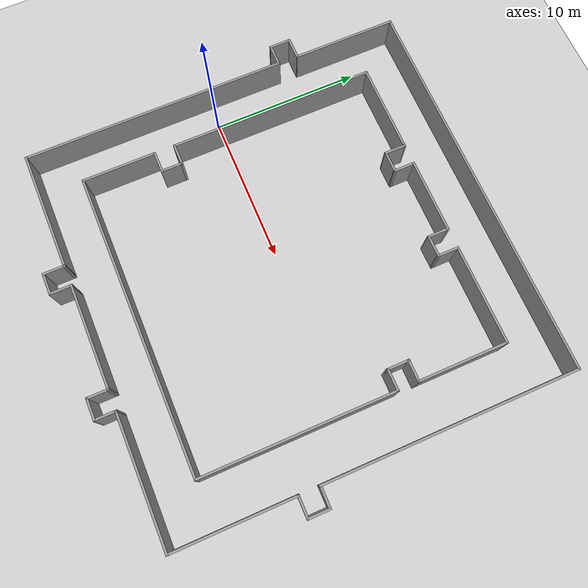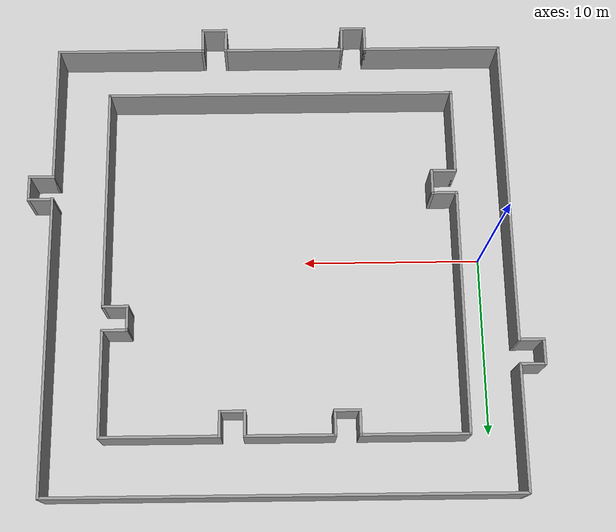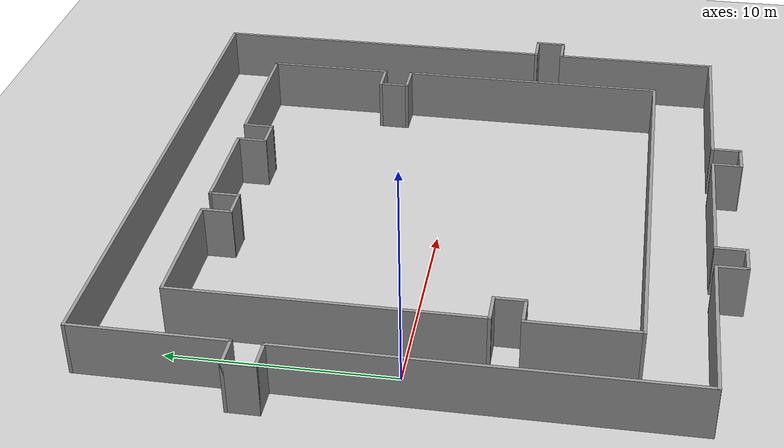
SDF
<sdf version="1.7">
 <world name="default">
  <light name="sun" type="directional">
   <pose>0 0 10 0 -0 0</pose>
   <diffuse>0.8 0.8 0.8 1</diffuse>
   <specular>0.2 0.2 0.2 1</specular>
   <attenuation>
    <range>1000</range>
    <constant>0.9</constant>
    <linear>0.01</linear>
    <quadratic>0.001</quadratic>
   </attenuation>
   <direction>-0.5 0.1 -0.9</direction>
   <spot><inner_angle>0</inner_angle><outer_angle>0</outer_angle><falloff>0</falloff></spot>
  </light>
  <model name="ground_plane">
   <static>1</static>
   <link name="link">
    <collision name="collision">
     <geometry><plane><normal>0 0 1</normal><size>100 100</size></plane></geometry>
     <surface><friction><ode><mu>100</mu><mu2>50</mu2></ode></friction></surface>
    </collision>
    <visual name="visual">
     <cast_shadows>0</cast_shadows>
     <geometry><plane><normal>0 0 1</normal><size>100 100</size></plane></geometry>
     <material>
      <script><uri>file://media/materials/scripts/gazebo.material</uri><name>Gazebo/Grey</name></script>
     </material>
    </visual>
   </link>
  </model>
  <gravity>0 0 -9.8</gravity>
  <magnetic_field>6e-06 2.3e-05 -4.2e-05</magnetic_field>
  <atmosphere type="adiabatic"/>
  <physics type="ode">
   <max_step_size>0.001</max_step_size>
   <real_time_factor>1</real_time_factor>
   <real_time_update_rate>1000</real_time_update_rate>
  </physics>
  <scene><ambient>0.4 0.4 0.4 1</ambient><background>0.7 0.7 0.7 1</background><shadows>1</shadows></scene>
  <spherical_coordinates>
   <surface_model>EARTH_WGS84</surface_model>
   <latitude_deg>0</latitude_deg>
   <longitude_deg>0</longitude_deg>
   <elevation>0</elevation>
   <heading_deg>0</heading_deg>
  </spherical_coordinates>
  <model name="4corners_with_8doors">
   <pose>11.3795 -0.187 0 0 -0 0</pose>
   <link name="Wall_110">
    <collision name="Wall_110_Collision">
     <geometry><box><size>26 0.15 2.5</size></box></geometry>
     <pose>0 0 1.25 0 -0 0</pose>
    </collision>
    <visual name="Wall_110_Visual">
     <pose>0 0 1.25 0 -0 0</pose>
     <geometry><box><size>26 0.15 2.5</size></box></geometry>
     <material>
      <script><uri>file://media/materials/scripts/gazebo.material</uri><name>Gazebo/Grey</name></script>
      <ambient>1 1 1 1</ambient>
     </material>
     <meta><layer>0</layer></meta>
    </visual>
    <pose>0.008475 13.6 0 0 -0 0</pose>
   </link>
   <link name="Wall_139">
    <collision name="Wall_139_Collision">
     <geometry><box><size>1.5 0.15 2.5</size></box></geometry>
     <pose>0 0 1.25 0 -0 0</pose>
    </collision>
    <visual name="Wall_139_Visual">
     <pose>0 0 1.25 0 -0 0</pose>
     <geometry><box><size>1.5 0.15 2.5</size></box></geometry>
     <material>
      <script><uri>file://media/materials/scripts/gazebo.material</uri><name>Gazebo/Grey</name></script>
      <ambient>1 1 1 1</ambient>
     </material>
     <meta><layer>0</layer></meta>
    </visual>
    <pose>-13.6085 6.71528 0 0 -0 0</pose>
   </link>
   <link name="Wall_147">
    <collision name="Wall_147_Collision">
     <geometry><box><size>7 0.15 2.5</size></box></geometry>
     <pose>0 0 1.25 0 -0 0</pose>
    </collision>
    <visual name="Wall_147_Visual">
     <pose>0 0 1.25 0 -0 0</pose>
     <geometry><box><size>7 0.15 2.5</size></box></geometry>
     <material>
      <script><uri>file://media/materials/scripts/gazebo.material</uri><name>Gazebo/Grey</name></script>
      <ambient>1 1 1 1</ambient>
     </material>
     <meta><layer>0</layer></meta>
    </visual>
    <pose>-12.9165 10.175 0 0 -0 -1.5708</pose>
   </link>
   <link name="Wall_149">
    <collision name="Wall_149_Collision">
     <geometry><box><size>1.5 0.15 2.5</size></box></geometry>
     <pose>0 0 1.25 0 -0 0</pose>
    </collision>
    <visual name="Wall_149_Visual">
     <pose>0 0 1.25 0 -0 0</pose>
     <geometry><box><size>1.5 0.15 2.5</size></box></geometry>
     <material>
      <script><uri>file://media/materials/scripts/gazebo.material</uri><name>Gazebo/Grey</name></script>
      <ambient>1 1 1 1</ambient>
     </material>
     <meta><layer>0</layer></meta>
    </visual>
    <pose>-14.2835 6.04028 0 0 -0 -1.5708</pose>
   </link>
   <link name="Wall_150">
    <collision name="Wall_150_Collision">
     <geometry><box><size>1.5 0.15 2.5</size></box></geometry>
     <pose>0 0 1.25 0 -0 0</pose>
    </collision>
    <visual name="Wall_150_Visual">
     <pose>0 0 1.25 0 -0 0</pose>
     <geometry><box><size>1.5 0.15 2.5</size></box></geometry>
     <material>
      <script><uri>file://media/materials/scripts/gazebo.material</uri><name>Gazebo/Grey</name></script>
      <ambient>1 1 1 1</ambient>
     </material>
     <meta><layer>0</layer></meta>
    </visual>
    <pose>-13.6085 5.36528 0 0 -0 0</pose>
   </link>
   <link name="Wall_173">
    <collision name="Wall_173_Collision">
     <geometry><box><size>8 0.15 2.5</size></box></geometry>
     <pose>0 0 1.25 0 -0 0</pose>
    </collision>
    <visual name="Wall_173_Visual">
     <pose>0 0 1.25 0 -0 0</pose>
     <geometry><box><size>8 0.15 2.5</size></box></geometry>
     <material>
      <script><uri>file://media/materials/scripts/gazebo.material</uri><name>Gazebo/Grey</name></script>
      <ambient>1 1 1 1</ambient>
     </material>
     <meta><layer>0</layer></meta>
    </visual>
    <pose>-8.99152 -12.25 0 0 -0 0</pose>
   </link>
   <link name="Wall_174">
    <collision name="Wall_174_Collision">
     <geometry><box><size>1.5 0.15 2.5</size></box></geometry>
     <pose>0 0 1.25 0 -0 0</pose>
    </collision>
    <visual name="Wall_174_Visual">
     <pose>0 0 1.25 0 -0 0</pose>
     <geometry><box><size>1.5 0.15 2.5</size></box></geometry>
     <material>
      <script><uri>file://media/materials/scripts/gazebo.material</uri><name>Gazebo/Grey</name></script>
      <ambient>1 1 1 1</ambient>
     </material>
     <meta><layer>0</layer></meta>
    </visual>
    <pose>-5.06653 -12.925 0 0 -0 -1.5708</pose>
   </link>
   <link name="Wall_175">
    <collision name="Wall_175_Collision">
     <geometry><box><size>1.5 0.15 2.5</size></box></geometry>
     <pose>0 0 1.25 0 -0 0</pose>
    </collision>
    <visual name="Wall_175_Visual">
     <pose>0 0 1.25 0 -0 0</pose>
     <geometry><box><size>1.5 0.15 2.5</size></box></geometry>
     <material>
      <script><uri>file://media/materials/scripts/gazebo.material</uri><name>Gazebo/Grey</name></script>
      <ambient>1 1 1 1</ambient>
     </material>
     <meta><layer>0</layer></meta>
    </visual>
    <pose>-4.39152 -13.6 0 0 -0 0</pose>
   </link>
   <link name="Wall_176">
    <collision name="Wall_176_Collision">
     <geometry><box><size>1.5 0.15 2.5</size></box></geometry>
     <pose>0 0 1.25 0 -0 0</pose>
    </collision>
    <visual name="Wall_176_Visual">
     <pose>0 0 1.25 0 -0 0</pose>
     <geometry><box><size>1.5 0.15 2.5</size></box></geometry>
     <material>
      <script><uri>file://media/materials/scripts/gazebo.material</uri><name>Gazebo/Grey</name></script>
      <ambient>1 1 1 1</ambient>
     </material>
     <meta><layer>0</layer></meta>
    </visual>
    <pose>-3.71652 -12.925 0 0 -0 1.5708</pose>
   </link>
   <link name="Wall_177">
    <collision name="Wall_177_Collision">
     <geometry><box><size>7 0.15 2.5</size></box></geometry>
     <pose>0 0 1.25 0 -0 0</pose>
    </collision>
    <visual name="Wall_177_Visual">
     <pose>0 0 1.25 0 -0 0</pose>
     <geometry><box><size>7 0.15 2.5</size></box></geometry>
     <material>
      <script><uri>file://media/materials/scripts/gazebo.material</uri><name>Gazebo/Grey</name></script>
      <ambient>1 1 1 1</ambient>
     </material>
     <meta><layer>0</layer></meta>
    </visual>
    <pose>-0.291525 -12.25 0 0 -0 0</pose>
   </link>
   <link name="Wall_178">
    <collision name="Wall_178_Collision">
     <geometry><box><size>1.43043 0.15 2.5</size></box></geometry>
     <pose>0 0 1.25 0 -0 0</pose>
    </collision>
    <visual name="Wall_178_Visual">
     <pose>0 0 1.25 0 -0 0</pose>
     <geometry><box><size>1.43043 0.15 2.5</size></box></geometry>
     <material>
      <script><uri>file://media/materials/scripts/gazebo.material</uri><name>Gazebo/Grey</name></script>
      <ambient>1 1 1 1</ambient>
     </material>
     <meta><layer>0</layer></meta>
    </visual>
    <pose>3.13347 -12.8902 0 0 -0 -1.5708</pose>
   </link>
   <link name="Wall_179">
    <collision name="Wall_179_Collision">
     <geometry><box><size>1.5 0.15 2.5</size></box></geometry>
     <pose>0 0 1.25 0 -0 0</pose>
    </collision>
    <visual name="Wall_179_Visual">
     <pose>0 0 1.25 0 -0 0</pose>
     <geometry><box><size>1.5 0.15 2.5</size></box></geometry>
     <material>
      <script><uri>file://media/materials/scripts/gazebo.material</uri><name>Gazebo/Grey</name></script>
      <ambient>1 1 1 1</ambient>
     </material>
     <meta><layer>0</layer></meta>
    </visual>
    <pose>3.80848 -13.5652 0 0 -0 0</pose>
   </link>
   <link name="Wall_180">
    <collision name="Wall_180_Collision">
     <geometry><box><size>1.43043 0.15 2.5</size></box></geometry>
     <pose>0 0 1.25 0 -0 0</pose>
    </collision>
    <visual name="Wall_180_Visual">
     <pose>0 0 1.25 0 -0 0</pose>
     <geometry><box><size>1.43043 0.15 2.5</size></box></geometry>
     <material>
      <script><uri>file://media/materials/scripts/gazebo.material</uri><name>Gazebo/Grey</name></script>
      <ambient>1 1 1 1</ambient>
     </material>
     <meta><layer>0</layer></meta>
    </visual>
    <pose>4.48348 -12.8902 0 0 -0 1.5708</pose>
   </link>
   <link name="Wall_181">
    <collision name="Wall_181_Collision">
     <geometry><box><size>8.6 0.15 2.5</size></box></geometry>
     <pose>0 0 1.25 0 -0 0</pose>
    </collision>
    <visual name="Wall_181_Visual">
     <pose>0 0 1.25 0 -0 0</pose>
     <geometry><box><size>8.6 0.15 2.5</size></box></geometry>
     <material>
      <script><uri>file://media/materials/scripts/gazebo.material</uri><name>Gazebo/Grey</name></script>
      <ambient>1 1 1 1</ambient>
     </material>
     <meta><layer>0</layer></meta>
    </visual>
    <pose>8.70847 -12.25 0 0 -0 0</pose>
   </link>
   <link name="Wall_185">
    <collision name="Wall_185_Collision">
     <geometry><box><size>20 0.15 2.5</size></box></geometry>
     <pose>0 0 1.25 0 -0 0</pose>
    </collision>
    <visual name="Wall_185_Visual">
     <pose>0 0 1.25 0 -0 0</pose>
     <geometry><box><size>20 0.15 2.5</size></box></geometry>
     <material>
      <script><uri>file://media/materials/scripts/gazebo.material</uri><name>Gazebo/Grey</name></script>
      <ambient>1 1 1 1</ambient>
     </material>
     <meta><layer>0</layer></meta>
    </visual>
    <pose>-0.065587 -9.39204 0 0 -0 3.14159</pose>
   </link>
   <link name="Wall_188">
    <collision name="Wall_188_Collision">
     <geometry><box><size>5 0.15 2.5</size></box></geometry>
     <pose>0 0 1.25 0 -0 0</pose>
    </collision>
    <visual name="Wall_188_Visual">
     <pose>0 0 1.25 0 -0 0</pose>
     <geometry><box><size>5 0.15 2.5</size></box></geometry>
     <material>
      <script><uri>file://media/materials/scripts/gazebo.material</uri><name>Gazebo/Grey</name></script>
      <ambient>1 1 1 1</ambient>
     </material>
     <meta><layer>0</layer></meta>
    </visual>
    <pose>-9.99059 -6.96704 0 0 -0 1.5708</pose>
   </link>
   <link name="Wall_189">
    <collision name="Wall_189_Collision">
     <geometry><box><size>1.5 0.15 2.5</size></box></geometry>
     <pose>0 0 1.25 0 -0 0</pose>
    </collision>
    <visual name="Wall_189_Visual">
     <pose>0 0 1.25 0 -0 0</pose>
     <geometry><box><size>1.5 0.15 2.5</size></box></geometry>
     <material>
      <script><uri>file://media/materials/scripts/gazebo.material</uri><name>Gazebo/Grey</name></script>
      <ambient>1 1 1 1</ambient>
     </material>
     <meta><layer>0</layer></meta>
    </visual>
    <pose>-9.31559 -4.54204 0 0 -0 0</pose>
   </link>
   <link name="Wall_190">
    <collision name="Wall_190_Collision">
     <geometry><box><size>1.5 0.15 2.5</size></box></geometry>
     <pose>0 0 1.25 0 -0 0</pose>
    </collision>
    <visual name="Wall_190_Visual">
     <pose>0 0 1.25 0 -0 0</pose>
     <geometry><box><size>1.5 0.15 2.5</size></box></geometry>
     <material>
      <script><uri>file://media/materials/scripts/gazebo.material</uri><name>Gazebo/Grey</name></script>
      <ambient>1 1 1 1</ambient>
     </material>
     <meta><layer>0</layer></meta>
    </visual>
    <pose>-8.64059 -3.86704 0 0 -0 1.5708</pose>
   </link>
   <link name="Wall_191">
    <collision name="Wall_191_Collision">
     <geometry><box><size>1.5 0.15 2.5</size></box></geometry>
     <pose>0 0 1.25 0 -0 0</pose>
    </collision>
    <visual name="Wall_191_Visual">
     <pose>0 0 1.25 0 -0 0</pose>
     <geometry><box><size>1.5 0.15 2.5</size></box></geometry>
     <material>
      <script><uri>file://media/materials/scripts/gazebo.material</uri><name>Gazebo/Grey</name></script>
      <ambient>1 1 1 1</ambient>
     </material>
     <meta><layer>0</layer></meta>
    </visual>
    <pose>-9.31559 -3.19204 0 0 -0 3.14159</pose>
   </link>
   <link name="Wall_192">
    <collision name="Wall_192_Collision">
     <geometry><box><size>13.8 0.15 2.5</size></box></geometry>
     <pose>0 0 1.25 0 -0 0</pose>
    </collision>
    <visual name="Wall_192_Visual">
     <pose>0 0 1.25 0 -0 0</pose>
     <geometry><box><size>13.8 0.15 2.5</size></box></geometry>
     <material>
      <script><uri>file://media/materials/scripts/gazebo.material</uri><name>Gazebo/Grey</name></script>
      <ambient>1 1 1 1</ambient>
     </material>
     <meta><layer>0</layer></meta>
    </visual>
    <pose>-9.99059 3.63296 0 0 -0 1.5708</pose>
   </link>
   <link name="Wall_194">
    <collision name="Wall_194_Collision">
     <geometry><box><size>8 0.15 2.5</size></box></geometry>
     <pose>0 0 1.25 0 -0 0</pose>
    </collision>
    <visual name="Wall_194_Visual">
     <pose>0 0 1.25 0 -0 0</pose>
     <geometry><box><size>8 0.15 2.5</size></box></geometry>
     <material>
      <script><uri>file://media/materials/scripts/gazebo.material</uri><name>Gazebo/Grey</name></script>
      <ambient>1 1 1 1</ambient>
     </material>
     <meta><layer>0</layer></meta>
    </visual>
    <pose>12.9335 -8.325 0 0 -0 1.5708</pose>
   </link>
   <link name="Wall_195">
    <collision name="Wall_195_Collision">
     <geometry><box><size>1.5 0.15 2.5</size></box></geometry>
     <pose>0 0 1.25 0 -0 0</pose>
    </collision>
    <visual name="Wall_195_Visual">
     <pose>0 0 1.25 0 -0 0</pose>
     <geometry><box><size>1.5 0.15 2.5</size></box></geometry>
     <material>
      <script><uri>file://media/materials/scripts/gazebo.material</uri><name>Gazebo/Grey</name></script>
      <ambient>1 1 1 1</ambient>
     </material>
     <meta><layer>0</layer></meta>
    </visual>
    <pose>13.6085 -4.4 0 0 -0 0</pose>
   </link>
   <link name="Wall_196">
    <collision name="Wall_196_Collision">
     <geometry><box><size>1.5 0.15 2.5</size></box></geometry>
     <pose>0 0 1.25 0 -0 0</pose>
    </collision>
    <visual name="Wall_196_Visual">
     <pose>0 0 1.25 0 -0 0</pose>
     <geometry><box><size>1.5 0.15 2.5</size></box></geometry>
     <material>
      <script><uri>file://media/materials/scripts/gazebo.material</uri><name>Gazebo/Grey</name></script>
      <ambient>1 1 1 1</ambient>
     </material>
     <meta><layer>0</layer></meta>
    </visual>
    <pose>14.2835 -3.725 0 0 -0 1.5708</pose>
   </link>
   <link name="Wall_197">
    <collision name="Wall_197_Collision">
     <geometry><box><size>1.5 0.15 2.5</size></box></geometry>
     <pose>0 0 1.25 0 -0 0</pose>
    </collision>
    <visual name="Wall_197_Visual">
     <pose>0 0 1.25 0 -0 0</pose>
     <geometry><box><size>1.5 0.15 2.5</size></box></geometry>
     <material>
      <script><uri>file://media/materials/scripts/gazebo.material</uri><name>Gazebo/Grey</name></script>
      <ambient>1 1 1 1</ambient>
     </material>
     <meta><layer>0</layer></meta>
    </visual>
    <pose>13.6085 -3.05 0 0 -0 3.14159</pose>
   </link>
   <link name="Wall_198">
    <collision name="Wall_198_Collision">
     <geometry><box><size>16.8 0.15 2.5</size></box></geometry>
     <pose>0 0 1.25 0 -0 0</pose>
    </collision>
    <visual name="Wall_198_Visual">
     <pose>0 0 1.25 0 -0 0</pose>
     <geometry><box><size>16.8 0.15 2.5</size></box></geometry>
     <material>
      <script><uri>file://media/materials/scripts/gazebo.material</uri><name>Gazebo/Grey</name></script>
      <ambient>1 1 1 1</ambient>
     </material>
     <meta><layer>0</layer></meta>
    </visual>
    <pose>12.9335 5.275 0 0 -0 1.5708</pose>
   </link>
   <link name="Wall_200">
    <collision name="Wall_200_Collision">
     <geometry><box><size>6 0.15 2.5</size></box></geometry>
     <pose>0 0 1.25 0 -0 0</pose>
    </collision>
    <visual name="Wall_200_Visual">
     <pose>0 0 1.25 0 -0 0</pose>
     <geometry><box><size>6 0.15 2.5</size></box></geometry>
     <material>
      <script><uri>file://media/materials/scripts/gazebo.material</uri><name>Gazebo/Grey</name></script>
      <ambient>1 1 1 1</ambient>
     </material>
     <meta><layer>0</layer></meta>
    </visual>
    <pose>9.85947 7.533 0 0 -0 -1.5708</pose>
   </link>
   <link name="Wall_201">
    <collision name="Wall_201_Collision">
     <geometry><box><size>1.5 0.15 2.5</size></box></geometry>
     <pose>0 0 1.25 0 -0 0</pose>
    </collision>
    <visual name="Wall_201_Visual">
     <pose>0 0 1.25 0 -0 0</pose>
     <geometry><box><size>1.5 0.15 2.5</size></box></geometry>
     <material>
      <script><uri>file://media/materials/scripts/gazebo.material</uri><name>Gazebo/Grey</name></script>
      <ambient>1 1 1 1</ambient>
     </material>
     <meta><layer>0</layer></meta>
    </visual>
    <pose>9.18447 4.608 0 0 -0 3.14159</pose>
   </link>
   <link name="Wall_202">
    <collision name="Wall_202_Collision">
     <geometry><box><size>1.5 0.15 2.5</size></box></geometry>
     <pose>0 0 1.25 0 -0 0</pose>
    </collision>
    <visual name="Wall_202_Visual">
     <pose>0 0 1.25 0 -0 0</pose>
     <geometry><box><size>1.5 0.15 2.5</size></box></geometry>
     <material>
      <script><uri>file://media/materials/scripts/gazebo.material</uri><name>Gazebo/Grey</name></script>
      <ambient>1 1 1 1</ambient>
     </material>
     <meta><layer>0</layer></meta>
    </visual>
    <pose>8.50948 3.933 0 0 -0 -1.5708</pose>
   </link>
   <link name="Wall_203">
    <collision name="Wall_203_Collision">
     <geometry><box><size>1.46975 0.15 2.5</size></box></geometry>
     <pose>0 0 1.25 0 -0 0</pose>
    </collision>
    <visual name="Wall_203_Visual">
     <pose>0 0 1.25 0 -0 0</pose>
     <geometry><box><size>1.46975 0.15 2.5</size></box></geometry>
     <material>
      <script><uri>file://media/materials/scripts/gazebo.material</uri><name>Gazebo/Grey</name></script>
      <ambient>1 1 1 1</ambient>
     </material>
     <meta><layer>0</layer></meta>
    </visual>
    <pose>9.16935 3.258 0 0 -0 0</pose>
   </link>
   <link name="Wall_204">
    <collision name="Wall_204_Collision">
     <geometry><box><size>12.75 0.15 2.5</size></box></geometry>
     <pose>0 0 1.25 0 -0 0</pose>
    </collision>
    <visual name="Wall_204_Visual">
     <pose>0 0 1.25 0 -0 0</pose>
     <geometry><box><size>12.75 0.15 2.5</size></box></geometry>
     <material>
      <script><uri>file://media/materials/scripts/gazebo.material</uri><name>Gazebo/Grey</name></script>
      <ambient>1 1 1 1</ambient>
     </material>
     <meta><layer>0</layer></meta>
    </visual>
    <pose>9.85947 -3.042 0 0 -0 -1.5708</pose>
   </link>
   <link name="Wall_211">
    <collision name="Wall_211_Collision">
     <geometry><box><size>6 0.15 2.5</size></box></geometry>
     <pose>0 0 1.25 0 -0 0</pose>
    </collision>
    <visual name="Wall_211_Visual">
     <pose>0 0 1.25 0 -0 0</pose>
     <geometry><box><size>6 0.15 2.5</size></box></geometry>
     <material>
      <script><uri>file://media/materials/scripts/gazebo.material</uri><name>Gazebo/Grey</name></script>
      <ambient>1 1 1 1</ambient>
     </material>
     <meta><layer>0</layer></meta>
    </visual>
    <pose>-7.06559 10.458 0 0 -0 0</pose>
   </link>
   <link name="Wall_212">
    <collision name="Wall_212_Collision">
     <geometry><box><size>1.47396 0.15 2.5</size></box></geometry>
     <pose>0 0 1.25 0 -0 0</pose>
    </collision>
    <visual name="Wall_212_Visual">
     <pose>0 0 1.25 0 -0 0</pose>
     <geometry><box><size>1.47396 0.15 2.5</size></box></geometry>
     <material>
      <script><uri>file://media/materials/scripts/gazebo.material</uri><name>Gazebo/Grey</name></script>
      <ambient>1 1 1 1</ambient>
     </material>
     <meta><layer>0</layer></meta>
    </visual>
    <pose>-4.14056 9.79598 0 0 -0 -1.57075</pose>
   </link>
   <link name="Wall_213">
    <collision name="Wall_213_Collision">
     <geometry><box><size>1.5 0.15 2.5</size></box></geometry>
     <pose>0 0 1.25 0 -0 0</pose>
    </collision>
    <visual name="Wall_213_Visual">
     <pose>0 0 1.25 0 -0 0</pose>
     <geometry><box><size>1.5 0.15 2.5</size></box></geometry>
     <material>
      <script><uri>file://media/materials/scripts/gazebo.material</uri><name>Gazebo/Grey</name></script>
      <ambient>1 1 1 1</ambient>
     </material>
     <meta><layer>0</layer></meta>
    </visual>
    <pose>-3.46552 9.134 0 0 -0 0</pose>
   </link>
   <link name="Wall_214">
    <collision name="Wall_214_Collision">
     <geometry><box><size>1.47396 0.15 2.5</size></box></geometry>
     <pose>0 0 1.25 0 -0 0</pose>
    </collision>
    <visual name="Wall_214_Visual">
     <pose>0 0 1.25 0 -0 0</pose>
     <geometry><box><size>1.47396 0.15 2.5</size></box></geometry>
     <material>
      <script><uri>file://media/materials/scripts/gazebo.material</uri><name>Gazebo/Grey</name></script>
      <ambient>1 1 1 1</ambient>
     </material>
     <meta><layer>0</layer></meta>
    </visual>
    <pose>-2.79056 9.79598 0 0 -0 1.57084</pose>
   </link>
   <link name="Wall_215">
    <collision name="Wall_215_Collision">
     <geometry><box><size>5 0.15 2.5</size></box></geometry>
     <pose>0 0 1.25 0 -0 0</pose>
    </collision>
    <visual name="Wall_215_Visual">
     <pose>0 0 1.25 0 -0 0</pose>
     <geometry><box><size>5 0.15 2.5</size></box></geometry>
     <material>
      <script><uri>file://media/materials/scripts/gazebo.material</uri><name>Gazebo/Grey</name></script>
      <ambient>1 1 1 1</ambient>
     </material>
     <meta><layer>0</layer></meta>
    </visual>
    <pose>-0.365587 10.458 0 0 -0 0</pose>
   </link>
   <link name="Wall_216">
    <collision name="Wall_216_Collision">
     <geometry><box><size>1.47396 0.15 2.5</size></box></geometry>
     <pose>0 0 1.25 0 -0 0</pose>
    </collision>
    <visual name="Wall_216_Visual">
     <pose>0 0 1.25 0 -0 0</pose>
     <geometry><box><size>1.47396 0.15 2.5</size></box></geometry>
     <material>
      <script><uri>file://media/materials/scripts/gazebo.material</uri><name>Gazebo/Grey</name></script>
      <ambient>1 1 1 1</ambient>
     </material>
     <meta><layer>0</layer></meta>
    </visual>
    <pose>2.05944 9.79598 0 0 -0 -1.57075</pose>
   </link>
   <link name="Wall_217">
    <collision name="Wall_217_Collision">
     <geometry><box><size>1.5 0.15 2.5</size></box></geometry>
     <pose>0 0 1.25 0 -0 0</pose>
    </collision>
    <visual name="Wall_217_Visual">
     <pose>0 0 1.25 0 -0 0</pose>
     <geometry><box><size>1.5 0.15 2.5</size></box></geometry>
     <material>
      <script><uri>file://media/materials/scripts/gazebo.material</uri><name>Gazebo/Grey</name></script>
      <ambient>1 1 1 1</ambient>
     </material>
     <meta><layer>0</layer></meta>
    </visual>
    <pose>2.73448 9.134 0 0 -0 0</pose>
   </link>
   <link name="Wall_218">
    <collision name="Wall_218_Collision">
     <geometry><box><size>1.47396 0.15 2.5</size></box></geometry>
     <pose>0 0 1.25 0 -0 0</pose>
    </collision>
    <visual name="Wall_218_Visual">
     <pose>0 0 1.25 0 -0 0</pose>
     <geometry><box><size>1.47396 0.15 2.5</size></box></geometry>
     <material>
      <script><uri>file://media/materials/scripts/gazebo.material</uri><name>Gazebo/Grey</name></script>
      <ambient>1 1 1 1</ambient>
     </material>
     <meta><layer>0</layer></meta>
    </visual>
    <pose>3.40944 9.79598 0 0 -0 1.57084</pose>
   </link>
   <link name="Wall_219">
    <collision name="Wall_219_Collision">
     <geometry><box><size>6.60006 0.15 2.5</size></box></geometry>
     <pose>0 0 1.25 0 -0 0</pose>
    </collision>
    <visual name="Wall_219_Visual">
     <pose>0 0 1.25 0 -0 0</pose>
     <geometry><box><size>6.60006 0.15 2.5</size></box></geometry>
     <material>
      <script><uri>file://media/materials/scripts/gazebo.material</uri><name>Gazebo/Grey</name></script>
      <ambient>1 1 1 1</ambient>
     </material>
     <meta><layer>0</layer></meta>
    </visual>
    <pose>6.63445 10.458 0 0 -0 7e-06</pose>
   </link>
   <link name="Wall_221">
    <collision name="Wall_221_Collision">
     <geometry><box><size>17.75 0.15 2.5</size></box></geometry>
     <pose>0 0 1.25 0 -0 0</pose>
    </collision>
    <visual name="Wall_221_Visual">
     <pose>0 0 1.25 0 -0 0</pose>
     <geometry><box><size>17.75 0.15 2.5</size></box></geometry>
     <material>
      <script><uri>file://media/materials/scripts/gazebo.material</uri><name>Gazebo/Grey</name></script>
      <ambient>1 1 1 1</ambient>
     </material>
     <meta><layer>0</layer></meta>
    </visual>
    <pose>-12.9335 -3.43472 0 0 -0 -1.5708</pose>
   </link>
   <static>1</static>
  </model>
  <plugin name="ActorPosesPlugin" filename="libActorPosesPlugin.so"/>
 </world>
</sdf>
